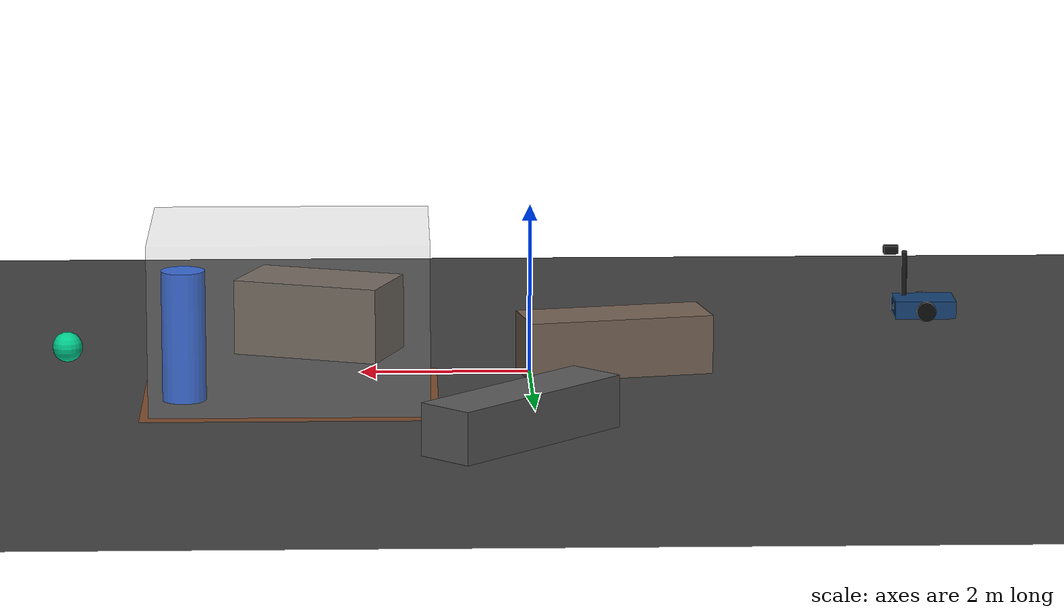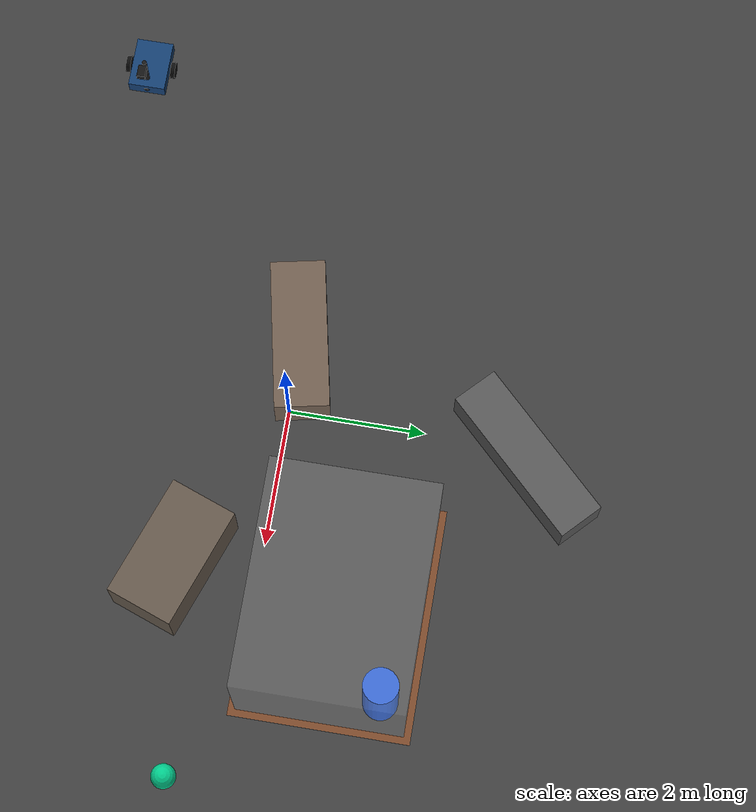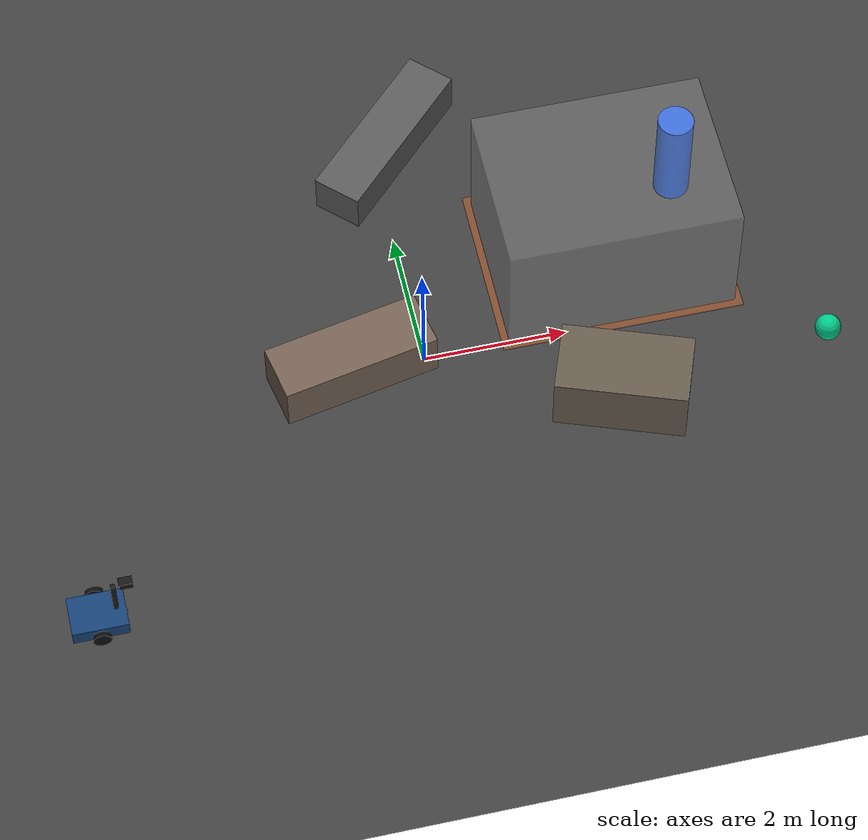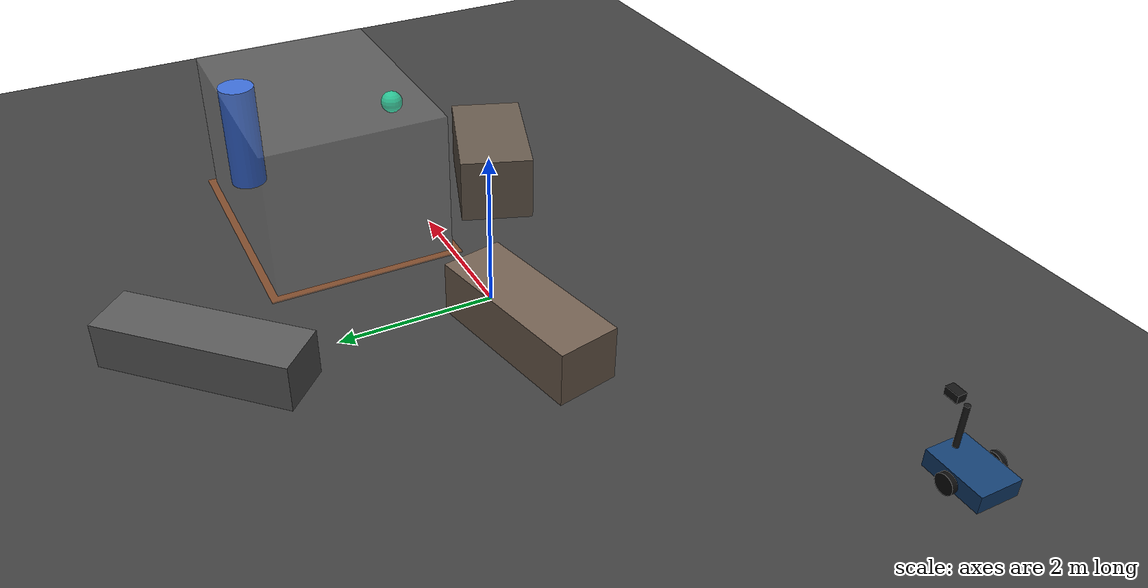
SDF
<?xml version="1.0" ?>
<sdf version="1.9">
  <world name="neuromemory_rescue_world">

    <!-- NeuroMemory Robot - Gazebo Rescue World Skeleton       -->
    <!-- Purpose: Gazebo-ready 3D rescue environment concept    -->

    <physics name="default_physics" type="ode">
      <max_step_size>0.001</max_step_size>
      <real_time_factor>1.0</real_time_factor>
      <real_time_update_rate>1000</real_time_update_rate>
    </physics>

    <scene>
      <ambient>0.35 0.35 0.35 1</ambient>
      <background>0.03 0.04 0.05 1</background>
      <shadows>true</shadows>
    </scene>

    <!-- Sun light -->
    <light name="sun" type="directional">
      <cast_shadows>true</cast_shadows>
      <pose>0 0 10 0 0 0</pose>
      <diffuse>0.8 0.8 0.75 1</diffuse>
      <specular>0.2 0.2 0.2 1</specular>
      <direction>-0.4 0.2 -1</direction>
    </light>

    <!-- Ground plane -->
    <model name="ground_plane">
      <static>true</static>
      <link name="ground_link">
        <collision name="ground_collision">
          <geometry>
            <plane>
              <normal>0 0 1</normal>
              <size>30 30</size>
            </plane>
          </geometry>
        </collision>
        <visual name="ground_visual">
          <geometry>
            <plane>
              <normal>0 0 1</normal>
              <size>30 30</size>
            </plane>
          </geometry>
          <material>
            <ambient>0.18 0.18 0.18 1</ambient>
            <diffuse>0.25 0.25 0.25 1</diffuse>
          </material>
        </visual>
      </link>
    </model>

    <!-- Rescue robot model -->
    <include>
      <uri>model://rescue_robot</uri>
      <name>rescue_robot</name>
      <pose>-5 -3 0.12 0 0 0</pose>
    </include>

    <!-- Survivor / target placeholder -->
    <model name="survivor_candidate">
      <static>true</static>
      <pose>4 2 0.9 0 0 0</pose>
      <link name="survivor_link">
        <visual name="body_visual">
          <geometry>
            <cylinder>
              <radius>0.25</radius>
              <length>1.5</length>
            </cylinder>
          </geometry>
          <material>
            <ambient>0.1 0.35 0.9 1</ambient>
            <diffuse>0.1 0.35 0.9 1</diffuse>
          </material>
        </visual>
        <collision name="body_collision">
          <geometry>
            <cylinder>
              <radius>0.25</radius>
              <length>1.5</length>
            </cylinder>
          </geometry>
        </collision>
      </link>
    </model>

    <!-- Debris blocks -->
    <model name="debris_block_01">
      <static>true</static>
      <pose>-1 0 0.35 0 0 0.2</pose>
      <link name="link">
        <collision name="collision">
          <geometry>
            <box>
              <size>2.2 0.8 0.7</size>
            </box>
          </geometry>
        </collision>
        <visual name="visual">
          <geometry>
            <box>
              <size>2.2 0.8 0.7</size>
            </box>
          </geometry>
          <material>
            <ambient>0.32 0.28 0.24 1</ambient>
            <diffuse>0.45 0.38 0.32 1</diffuse>
          </material>
        </visual>
      </link>
    </model>

    <model name="debris_block_02">
      <static>true</static>
      <pose>2.5 -1.2 0.45 0 0 -0.35</pose>
      <link name="link">
        <collision name="collision">
          <geometry>
            <box>
              <size>1.8 1.0 0.9</size>
            </box>
          </geometry>
        </collision>
        <visual name="visual">
          <geometry>
            <box>
              <size>1.8 1.0 0.9</size>
            </box>
          </geometry>
          <material>
            <ambient>0.28 0.26 0.23 1</ambient>
            <diffuse>0.4 0.35 0.3 1</diffuse>
          </material>
        </visual>
      </link>
    </model>

    <model name="debris_block_03">
      <static>true</static>
      <pose>0.2 3.5 0.3 0 0 0.8</pose>
      <link name="link">
        <collision name="collision">
          <geometry>
            <box>
              <size>2.5 0.7 0.6</size>
            </box>
          </geometry>
        </collision>
        <visual name="visual">
          <geometry>
            <box>
              <size>2.5 0.7 0.6</size>
            </box>
          </geometry>
          <material>
            <ambient>0.22 0.22 0.22 1</ambient>
            <diffuse>0.35 0.35 0.35 1</diffuse>
          </material>
        </visual>
      </link>
    </model>

    <!-- Low-visibility / smoke-like region represented as translucent volume -->
    <model name="low_visibility_zone">
      <static>true</static>
      <pose>2.8 1.2 1.0 0 0 0</pose>
      <link name="smoke_link">
        <visual name="smoke_visual">
          <geometry>
            <box>
              <size>3.2 2.4 2.0</size>
            </box>
          </geometry>
          <material>
            <ambient>0.7 0.7 0.7 0.25</ambient>
            <diffuse>0.7 0.7 0.7 0.25</diffuse>
            <transparency>0.65</transparency>
          </material>
        </visual>
      </link>
    </model>

    <!-- Risk zone marker on the ground -->
    <model name="risk_zone_marker">
      <static>true</static>
      <pose>2.8 1.2 0.011 0 0 0</pose>
      <link name="risk_zone_link">
        <visual name="risk_zone_visual">
          <geometry>
            <box>
              <size>3.4 2.6 0.02</size>
            </box>
          </geometry>
          <material>
            <ambient>0.9 0.4 0.1 0.4</ambient>
            <diffuse>0.9 0.4 0.1 0.4</diffuse>
            <transparency>0.55</transparency>
          </material>
        </visual>
      </link>
    </model>

    <!-- Camera viewpoint marker for next-best-view target -->
    <model name="next_best_view_marker">
      <static>true</static>
      <pose>5.5 -0.8 0.15 0 0 0</pose>
      <link name="marker_link">
        <visual name="marker_visual">
          <geometry>
            <sphere>
              <radius>0.18</radius>
            </sphere>
          </geometry>
          <material>
            <ambient>0.0 0.8 0.55 1</ambient>
            <diffuse>0.0 0.8 0.55 1</diffuse>
          </material>
        </visual>
      </link>
    </model>

  </world>
</sdf>

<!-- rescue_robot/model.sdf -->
<sdf version="1.9">
  <model name="rescue_robot">

    <!-- NeuroMemory Rescue Robot Model Skeleton                -->
    <!-- Differential-drive style body + camera sensor           -->

    <pose>0 0 0.12 0 0 0</pose>

    <link name="base_link">
      <inertial>
        <mass>8.0</mass>
        <inertia>
          <ixx>0.15</ixx>
          <iyy>0.18</iyy>
          <izz>0.25</izz>
          <ixy>0</ixy>
          <ixz>0</ixz>
          <iyz>0</iyz>
        </inertia>
      </inertial>

      <collision name="base_collision">
        <geometry>
          <box>
            <size>0.75 0.55 0.22</size>
          </box>
        </geometry>
      </collision>

      <visual name="base_visual">
        <geometry>
          <box>
            <size>0.75 0.55 0.22</size>
          </box>
        </geometry>
        <material>
          <ambient>0.05 0.15 0.28 1</ambient>
          <diffuse>0.08 0.25 0.45 1</diffuse>
        </material>
      </visual>
    </link>

    <!-- Left wheel -->
    <link name="left_wheel">
      <pose>0 0.34 0.0 1.5708 0 0</pose>
      <inertial>
        <mass>0.8</mass>
        <inertia>
          <ixx>0.01</ixx>
          <iyy>0.01</iyy>
          <izz>0.01</izz>
          <ixy>0</ixy>
          <ixz>0</ixz>
          <iyz>0</iyz>
        </inertia>
      </inertial>

      <collision name="collision">
        <geometry>
          <cylinder>
            <radius>0.12</radius>
            <length>0.07</length>
          </cylinder>
        </geometry>
      </collision>

      <visual name="visual">
        <geometry>
          <cylinder>
            <radius>0.12</radius>
            <length>0.07</length>
          </cylinder>
        </geometry>
        <material>
          <ambient>0.02 0.02 0.02 1</ambient>
          <diffuse>0.05 0.05 0.05 1</diffuse>
        </material>
      </visual>
    </link>

    <!-- Right wheel -->
    <link name="right_wheel">
      <pose>0 -0.34 0.0 1.5708 0 0</pose>
      <inertial>
        <mass>0.8</mass>
        <inertia>
          <ixx>0.01</ixx>
          <iyy>0.01</iyy>
          <izz>0.01</izz>
          <ixy>0</ixy>
          <ixz>0</ixz>
          <iyz>0</iyz>
        </inertia>
      </inertial>

      <collision name="collision">
        <geometry>
          <cylinder>
            <radius>0.12</radius>
            <length>0.07</length>
          </cylinder>
        </geometry>
      </collision>

      <visual name="visual">
        <geometry>
          <cylinder>
            <radius>0.12</radius>
            <length>0.07</length>
          </cylinder>
        </geometry>
        <material>
          <ambient>0.02 0.02 0.02 1</ambient>
          <diffuse>0.05 0.05 0.05 1</diffuse>
        </material>
      </visual>
    </link>

    <!-- Front caster -->
    <link name="front_caster">
      <pose>0.32 0 0.0 0 0 0</pose>
      <collision name="collision">
        <geometry>
          <sphere>
            <radius>0.07</radius>
          </sphere>
        </geometry>
      </collision>
      <visual name="visual">
        <geometry>
          <sphere>
            <radius>0.07</radius>
          </sphere>
        </geometry>
        <material>
          <ambient>0.1 0.1 0.1 1</ambient>
          <diffuse>0.15 0.15 0.15 1</diffuse>
        </material>
      </visual>
    </link>

    <!-- Camera mast -->
    <link name="camera_mast">
      <pose>0.25 0 0.42 0 0 0</pose>
      <collision name="collision">
        <geometry>
          <cylinder>
            <radius>0.035</radius>
            <length>0.55</length>
          </cylinder>
        </geometry>
      </collision>
      <visual name="visual">
        <geometry>
          <cylinder>
            <radius>0.035</radius>
            <length>0.55</length>
          </cylinder>
        </geometry>
        <material>
          <ambient>0.08 0.08 0.08 1</ambient>
          <diffuse>0.1 0.1 0.1 1</diffuse>
        </material>
      </visual>
    </link>

    <!-- Camera link -->
    <link name="camera_link">
      <pose>0.42 0 0.72 0 0 0</pose>

      <visual name="camera_visual">
        <geometry>
          <box>
            <size>0.18 0.12 0.10</size>
          </box>
        </geometry>
        <material>
          <ambient>0.02 0.02 0.02 1</ambient>
          <diffuse>0.08 0.08 0.08 1</diffuse>
        </material>
      </visual>

      <sensor name="front_camera" type="camera">
        <always_on>true</always_on>
        <update_rate>20</update_rate>
        <pose>0 0 0 0 0 0</pose>

        <camera>
          <horizontal_fov>1.047</horizontal_fov>
          <image>
            <width>640</width>
            <height>480</height>
            <format>R8G8B8</format>
          </image>
          <clip>
            <near>0.1</near>
            <far>50</far>
          </clip>
        </camera>

        <topic>/camera/image_raw</topic>
      </sensor>
    </link>

    <!-- Joints -->
    <joint name="left_wheel_joint" type="revolute">
      <parent>base_link</parent>
      <child>left_wheel</child>
      <axis>
        <xyz>0 0 1</xyz>
      </axis>
    </joint>

    <joint name="right_wheel_joint" type="revolute">
      <parent>base_link</parent>
      <child>right_wheel</child>
      <axis>
        <xyz>0 0 1</xyz>
      </axis>
    </joint>

    <joint name="camera_mast_joint" type="fixed">
      <parent>base_link</parent>
      <child>camera_mast</child>
    </joint>

    <joint name="camera_joint" type="fixed">
      <parent>camera_mast</parent>
      <child>camera_link</child>
    </joint>

  </model>
</sdf>
